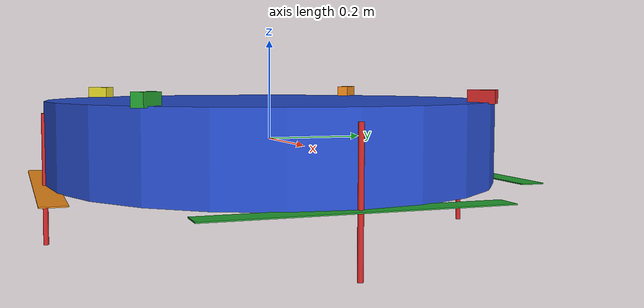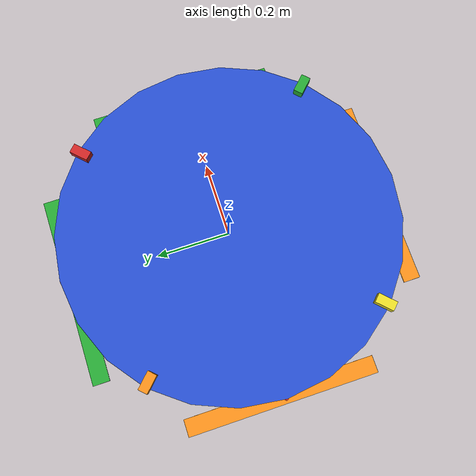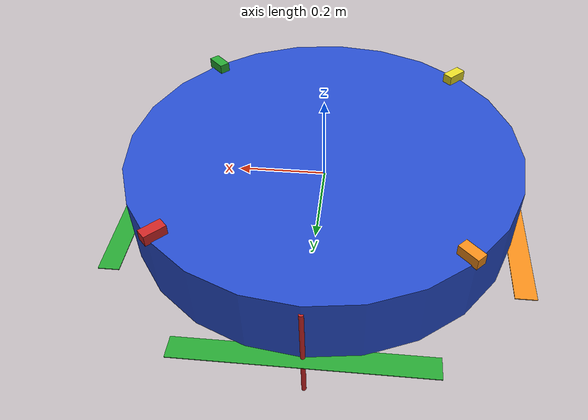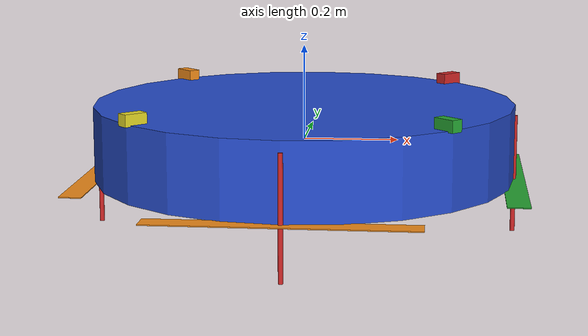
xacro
<?xml version="1.0"?>

<robot name="drone111" xmlns:xacro="http://www.ros.org/wiki/xacro">
    <xacro:property name="drone_radius" value="0.4475" />
    <xacro:property name="drone_height" value="0.160" />
    <xacro:property name="robot_name" value="robot_1" />

    <link name="drone_body">
        <inertial>
            <mass value="5.508"/>
            <inertia
                ixx="0.19978"
                ixy="-0.0087175"
                ixz="-0.00043907"
                iyy="0.19979"
                iyz="-0.00043735"
                izz="0.35833"/>

        </inertial>

        <collision>
            <geometry>
                <cylinder length="${drone_height}" radius="${drone_radius}" />
            </geometry>
        </collision>

        <visual>
            <origin xyz="0 0 0" rpy=" 0 0 0" />
            <geometry>
                <cylinder length="${drone_height}" radius="${drone_radius}" />
            </geometry>
        </visual>
    </link>

    <gazebo reference="drone_body">
        <material>Gazebo/Blue</material>
    </gazebo>

    <gazebo reference="drone_body">
        <gravity>true</gravity>
    </gazebo>

    <xacro:include filename="$(find drone_description)/urdf/drone.camera.xacro" />
    <xacro:include filename="$(find drone_description)/urdf/drone.imu.xacro" />
    <xacro:include filename="$(find drone_description)/urdf/drone.prop.xacro" />
    <xacro:include filename="$(find drone_description)/urdf/drone.gps.xacro" />
    <xacro:include filename="$(find drone_description)/urdf/drone.torque.xacro" />

</robot>

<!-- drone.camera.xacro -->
<robot xmlns:xacro="http://www.ros.org/wiki/xacro">
    <xacro:arg name="robot_name_arg" default="default_drone_x" />
    <xacro:property name="robot_name" value="$(arg robot_name_arg)" />

    <xacro:property name="camera_length" value="0.05" /> <!-- Size of square 'camera' box -->
    <xacro:property name="camera_width" value="0.025" />
    <xacro:property name="camera_height" value="0.025" />

    <!-- Define camera macro  -->
    <xacro:macro name="camera_gazebo" params="name xyz rpy color">

        <joint name="joint_${name}" type="fixed">
            <origin xyz="${xyz}" rpy="${rpy}" />
            <parent link="drone_body" />
            <child link="link_${name}" />
            <axis xyz="0 0 0" />
        </joint>

        <link name="link_${name}">
            <collision>
                <origin xyz="0 0 0" rpy="0 0 0" />
                <geometry>
                    <box size="${camera_length} ${camera_width} ${camera_height}" />
                </geometry>
            </collision>

            <visual>
                <origin xyz="0 0 0" rpy="0 0 0" />
                <geometry>
                    <box size="${camera_length} ${camera_width} ${camera_height}" />
                </geometry>
            </visual>

            <inertial>
                <mass value="0" />
                <origin xyz="0 0 0" rpy="0 0 0" />
                <inertia ixx="0" ixy="0" ixz="0" iyy="0" iyz="0" izz="0" />
            </inertial>
        </link>

        <gazebo reference="link_${name}">
            <material>Gazebo/${color}</material>
        </gazebo>

        <gazebo reference="link_${name}">
            <sensor name="sensor_${name}" type="depth">
                <update_rate>30</update_rate>
                <camera>
                    <horizontal_fov>1.047198</horizontal_fov>
                    <image>
                        <width>640</width>
                        <height>480</height>
                        <format>R8G8B8</format>
                    </image>
                    <clip>
                        <near>0.05</near>
                        <far>3</far>
                    </clip>
                </camera>
                <plugin name="controller_${name}" filename="libgazebo_ros_camera.so">
                    <ros>
                        <namespace>/${robot_name}</namespace>
                    </ros>
                    <baseline>0.2</baseline>
                    <alwaysOn>true</alwaysOn>
                    <updateRate>0.0</updateRate>
                    <cameraName>${robot_name}/drone/${name}</cameraName>
                    <cameraInfoTopicName>${robot_name}/camera_info</cameraInfoTopicName>
                    <imageTopicName>${robot_name}/image_raw</imageTopicName>
                    <depthImageTopicName>${robot_name}/image_depth</depthImageTopicName>
                    <depthImageInfoTopicName>${robot_name}/camera_depth</depthImageInfoTopicName>
                    <pointCloudTopicName>${robot_name}/points</pointCloudTopicName>
                    <frameName>${robot_name}/${name}_frame</frameName>
                    <pointCloudCutoff>0.5</pointCloudCutoff>
                    <pointCloudCutoffMax>3.0</pointCloudCutoffMax>
                    <distortionK1>0.0</distortionK1>
                    <distortionK2>0.0</distortionK2>
                    <distortionK3>0.0</distortionK3>
                    <distortionT1>0.0</distortionT1>
                    <distortionT2>0.0</distortionT2>
                    <CxPrime>0</CxPrime>
                    <Cx>0</Cx>
                    <Cy>0</Cy>
                    <focalLength>0</focalLength>
                    <hackBaseline>0</hackBaseline>
                </plugin>
            </sensor>
        </gazebo>
    </xacro:macro>

    <xacro:camera_gazebo name="camera_left" xyz="-0.305824 0.305824 0.090" rpy="0 0 2.35619" color="Orange" />
    <xacro:camera_gazebo name="camera_right" xyz="0.305824 -0.305824 0.090" rpy="0 0 -0.785398" color="Green"/>
    <xacro:camera_gazebo name="camera_front" xyz="0.305824 0.305824 0.090" rpy="0 0 0.785398" color="Red" />
    <xacro:camera_gazebo name="camera_rear" xyz="-0.305824 -0.305824 0.090" rpy="0 0 3.92699" color="Yellow"/>

</robot>

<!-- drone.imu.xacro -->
<robot name="matrice300rtk" xmlns:xacro="http://www.ros.org/wiki/xacro">

    <xacro:arg name="robot_name_arg" default="default_drone_x" />
    <xacro:property name="robot_name" value="$(arg robot_name_arg)" />

    <xacro:property name="imu_length" value="0.05" /> <!-- Size of IMU box -->

    <!-- Physical IMU Sendor Parameters-->
    <joint name="imu_joint" type="fixed">
        <origin xyz="0 0 0" rpy="0 0 0" />
        <parent link="drone_body" />
        <child link="imu_link" />
    </joint>

    <link name="imu_link">
        <visual>
            <origin xyz="0 0 0" rpy="0 0 0" />
            <geometry>
                <box size="${imu_length} ${imu_length} ${imu_length}" />
            </geometry>

        </visual>

        <inertial>
            <mass value="0" />
            <origin xyz="0 0 0" rpy="0 0 0" />
            <inertia ixx="0" ixy="0" ixz="0" iyy="0" iyz="0" izz="0" />
        </inertial>
    </link>

    <gazebo reference="imu_link">
        <gravity>false</gravity>
        <sensor name="imu_sensor_main" type="imu">
            <always_on>true</always_on>
            <update_rate>1000</update_rate>
            <visualize>true</visualize>
            <topic>imu_sensor_main</topic> <!--> THIS PROBABLY NEEDS TO BE ADJUSTED -->
            <plugin filename="libgazebo_ros_imu_sensor.so" name="imu_main_body">
                <ros>
                    <namespace>/${robot_name}</namespace>
                </ros>

                <initial_orientation_as_reference>false</initial_orientation_as_reference>
            </plugin>
            <pose>0 0 0 0 0 0</pose>
        </sensor>
    </gazebo>
</robot>

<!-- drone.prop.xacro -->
<robot xmlns:xacro="http://www.ros.org/wiki/xacro">
    <xacro:arg name="robot_name_arg" default="default_drone_x" />

    <xacro:property name="prop_length" value="0.5334" /> <!-- Size of square 'propeller' box -->
    <xacro:property name="prop_width" value="0.047328" />
    <xacro:property name="prop_height" value="0.002" />

    <xacro:property name="robot_name" value="$(arg robot_name_arg)" />

    <!-- Define propeller macro  -->
    <xacro:macro name="propeller_gazebo" params="name xyz rpy color"> <!-- NOTE: Propeller name hardcoded into the controller_config.yaml file  -->

        <joint name="/${robot_name}/joint_prop_${name}" type="continuous">
            <origin xyz="${xyz}" rpy="${rpy}" />
            <parent link="drone_body" />
            <child link="/${robot_name}/prop_${name}" />
            <axis xyz="0 0 1" />
        </joint>

        <link name="/${robot_name}/prop_${name}">
            <visual>
                <origin xyz="0 0 0" rpy="0 0 0" />
                <geometry>
                    <box size="${prop_length} ${prop_width} ${prop_height}" />
                </geometry>
            </visual>

            <inertial>
                <mass value="0.198" />
                <origin xyz="0 0 0" rpy="0 0 0" />
                <inertia ixx="0" ixy="0" ixz="0" iyy="0" iyz="0" izz="0.001543074" />
            </inertial>
        </link>

        <gazebo reference="/${robot_name}/prop_${name}">
            <material>Gazebo/${color}</material>
        </gazebo>

        <gazebo reference="/${robot_name}/prop_${name}">
            <gravity>true</gravity>
            <sensor name="imu_sensor_${name}" type="imu">
                <always_on>true</always_on>
                <update_rate>100</update_rate>
                <visualize>true</visualize>
                <topic>$imu_sensor_${name}</topic> <!--> THIS PROBABLY NEEDS TO BE ADJUSTED -->
                <plugin filename="libgazebo_ros_imu_sensor.so" name="imu_prop_${name}">
                    <ros>
                        <namespace>/${robot_name}</namespace>
                    </ros>
                    <topicName>$imu_prop_${name}</topicName>
                    <bodyName>$body_prop_${name}</bodyName>
                    <updateRateHZ>10.0</updateRateHZ>
                    <xyzOffset>0 0 0</xyzOffset>
                    <rpyOffset>0 0 0</rpyOffset>
                    <frameName>$frame_prop_${name}</frameName>
                    <initial_orientation_as_reference>true</initial_orientation_as_reference>
                </plugin>
                <pose>0 0 0 0 0 0</pose>
            </sensor>
        </gazebo>

        <gazebo>
            <plugin name="gazebo_ros_force" filename="libgazebo_ros_force.so">
                <ros>
                  <!-- Add namespace and remap the default topic -->
                  <namespace>/${robot_name}/prop_${name}</namespace>
                  <remapping>gazebo_ros_force:=motor_speed_cmd</remapping>
                </ros>
                <!-- Replace camelCase elements with camel_case ones -->
                <link_name>/${robot_name}/prop_${name}</link_name>
                <!-- New elements -->
                <force_frame>link</force_frame>

              </plugin>
        </gazebo>

    </xacro:macro>
    <!-- define each propeller using the macro  -->
    <xacro:propeller_gazebo name = "FR1" xyz="0.4475 0.0 -0.080" rpy= "0 0 1.5708" color="Green" />
    <xacro:propeller_gazebo name = "FL2" xyz="0.0 0.4475 -0.080" rpy= "0 0 0" color="Green"/>
    <xacro:propeller_gazebo name = "RL3" xyz="-0.4475 0.0 -0.080" rpy= "0 0 1.5708" color="Orange" />
    <xacro:propeller_gazebo name = "RR4" xyz="0.0 -0.4475 -0.080" rpy= "0 0 0" color="Orange"/>

</robot>

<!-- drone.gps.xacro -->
<robot name="matrice300rtk" xmlns:xacro="http://www.ros.org/wiki/xacro">
    <xacro:arg name="robot_name_arg" default="default_drone_x" />
    <xacro:property name="robot_name" value="$(arg robot_name_arg)" />

    <xacro:property name="gps_length" value="0.05" /> <!-- Size of GPS box -->

    <!-- Physical GPS Sendor Parameters-->
    <joint name="gps_joint" type="fixed">
        <origin xyz="0 0 0" rpy="0 0 0" />
        <parent link="drone_body" />
        <child link="gps_link" />
    </joint>

    <link name="gps_link">
        <visual>
            <origin xyz="0 0 0" rpy="0 0 0" />
            <geometry>
                <box size="${gps_length} ${gps_length} ${gps_length}" />
            </geometry>

        </visual>

        <inertial>
            <mass value="0" />
            <origin xyz="0 0 0" rpy="0 0 0" />
            <inertia ixx="0" ixy="0" ixz="0" iyy="0" iyz="0" izz="0" />
        </inertial>
    </link>

    <gazebo reference="gps_link">
      <sensor name="gps_sensor" type="gps">
          <always_on>true</always_on>
          <update_rate>100.0</update_rate>
          <plugin name="gps_controller" filename="libgazebo_ros_gps_sensor.so">
              <ros>
                  <namespace>/${robot_name}</namespace>
                  <remapping>gps_controller/out:=gps</remapping>
              </ros>
              <frame_name>${robot_name}/gps_link</frame_name>
          </plugin>
      </sensor>
      <material>Gazebo/Grey</material>
  </gazebo>
</robot>

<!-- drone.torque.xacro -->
<robot xmlns:xacro="http://www.ros.org/wiki/xacro">
    <xacro:arg name="robot_name_arg" default="default_drone_x" />
    <xacro:property name="robot_name" value="$(arg robot_name_arg)" />

    <xacro:property name="cylinder_height" value="0.25" /> <!-- Size of cylinder 'torque'  -->
    <xacro:property name="cylinder_radius" value="0.005" />

    <!-- Define torque macro  -->
    <xacro:macro name="torque_gazebo" params="name xyz rpy color">

        <joint name="joint_torque_${name}" type="continuous">
            <origin xyz="${xyz}" rpy="${rpy}" />
            <parent link="drone_body" />
            <child link="torque_${name}" />
            <axis xyz="0 1 0" />
        </joint>

        <link name="torque_${name}">
            <visual>
                <origin xyz="0 0 0" rpy="0 0 0" />
                <geometry>
                    <cylinder radius="${cylinder_radius}" length="${cylinder_height}" />
                </geometry>
            </visual>

            <inertial>
                <mass value="0.0001" />
                <origin xyz="0 0 0" rpy="0 0 0" />
                <inertia ixx="0" ixy="0" ixz="0" iyy="0" iyz="0" izz="0.00" />
            </inertial>
        </link>

        <gazebo reference="torque_${name}">
            <material>Gazebo/${color}</material>
        </gazebo>

    </xacro:macro>
    <!-- define each torque application point using the macro  -->
    <xacro:torque_gazebo name = "FR1" xyz="0.4475 0 -0.0675891" rpy= "0 0 0" color="Red" />
    <xacro:torque_gazebo name = "FL2" xyz="0 0.4475 -0.0675891" rpy= "0 0 1.5708" color="Red"/>
    <xacro:torque_gazebo name = "RL3" xyz="-0.4475 0 -0.0675891" rpy= "0 0 3.14159" color="Red" />
    <xacro:torque_gazebo name = "RR4" xyz="0 -0.4475 -0.0675891" rpy= "0 0 4.71239" color="Red"/>

</robot>
